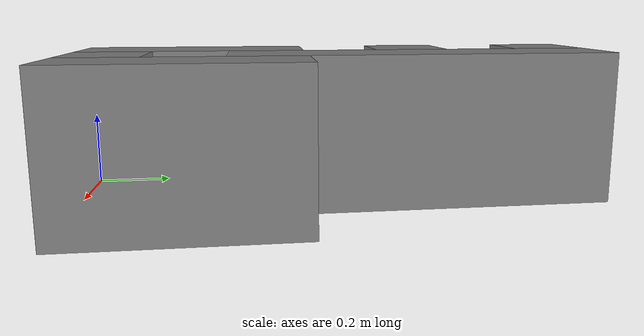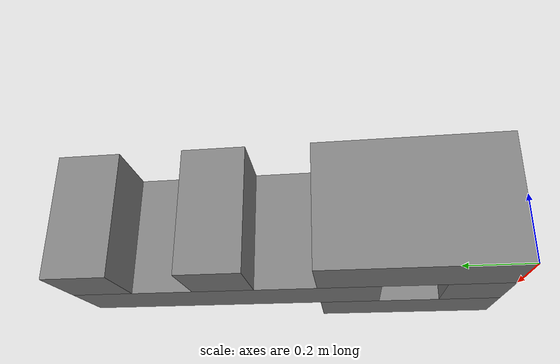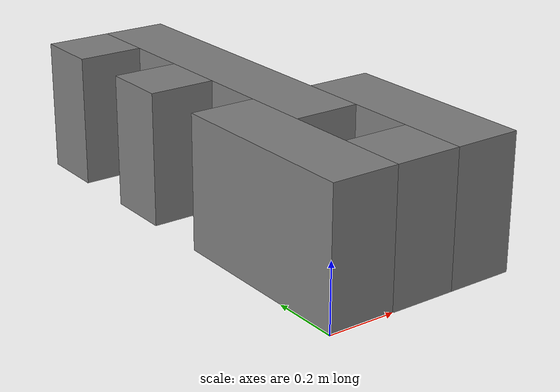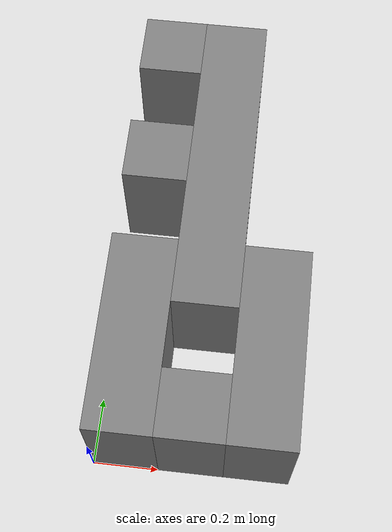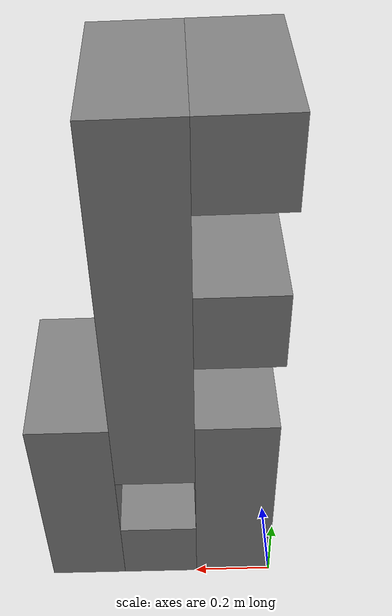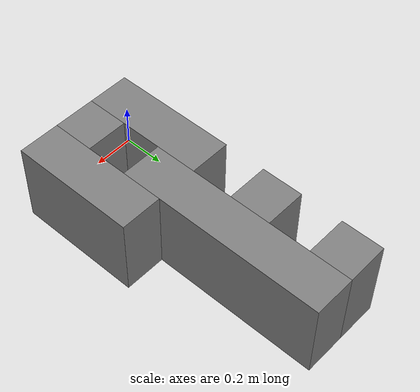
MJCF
<mujoco model="key">
  <worldbody>
    <body name="key_body" pos="0 0 0">
      <!-- This joint allows the object to tumble -->
      <joint type="hinge" damping="0.01" axis="0 0 1" />
      <geom name="key_handle_geom1" type="box" pos=".1 .3 .2" size="0.1 0.3 0.2" density="2"/>
      <geom name="key_handle_geom2" type="box" pos=".5 .3 .2" size="0.1 0.3 0.2" density="2"/>
      <geom name="key_handle_geom3" type="box" pos=".3 .9 .2" size="0.1 0.5 0.2" density="2"/>
      <geom name="key_handle_geom4" type="box" pos=".3 .1 .2" size="0.1 0.1 0.2" density="2"/>
      <geom name="key_nib1" type="box" pos=".1 .9 .2" size="0.1 0.1 0.2" density="2"/>
      <geom name="key_nib2" type="box" pos=".1 1.3 .2" size="0.1 0.1 0.2" density="2"/>
    </body>
  </worldbody>
</mujoco>
